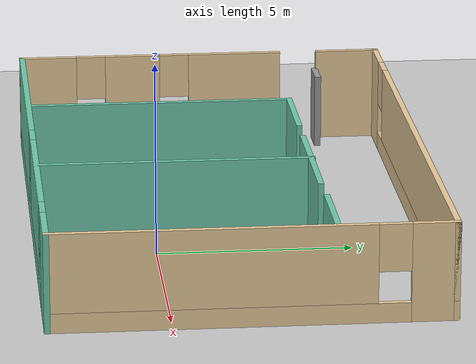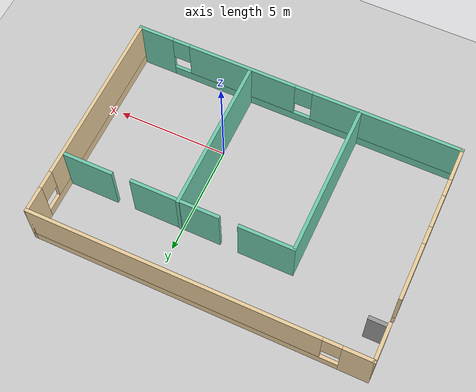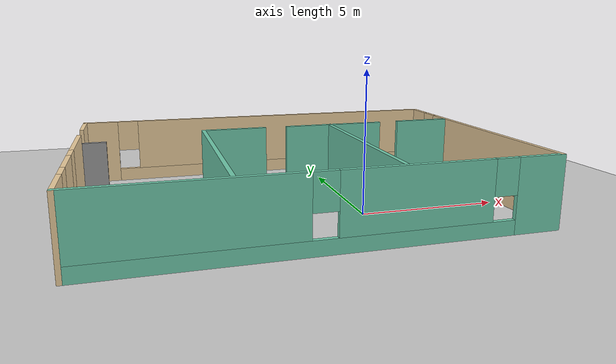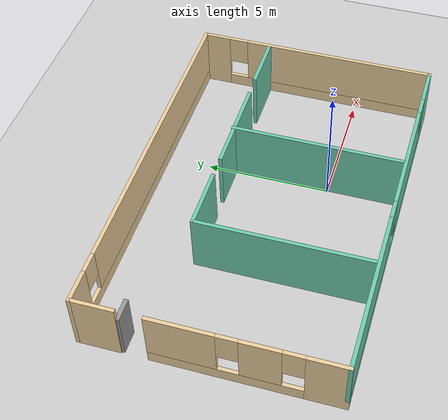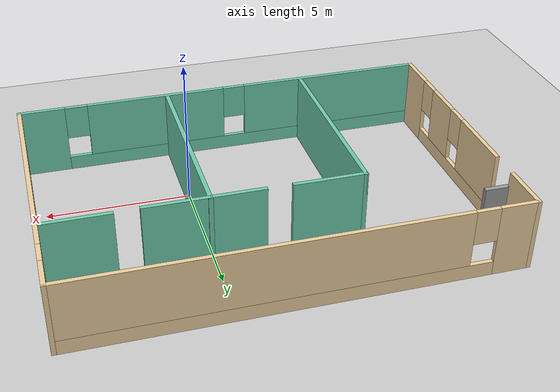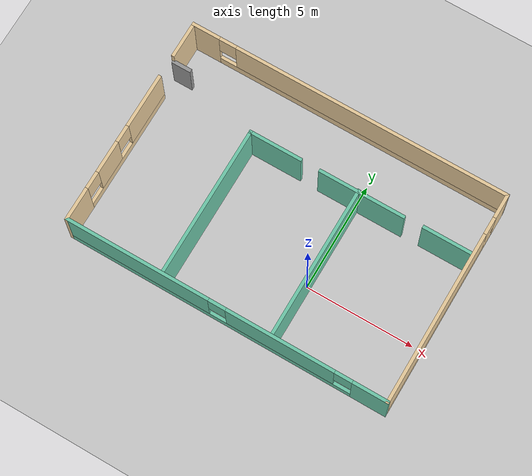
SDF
<sdf version="1.7">
 <world name="default">
  <plugin name="hello" filename="libhello.so"/>
  <light name="sun" type="directional">
   <pose>0 0 10 0 -0 0</pose>
   <diffuse>0.8 0.8 0.8 1</diffuse>
   <specular>0.2 0.2 0.2 1</specular>
   <attenuation>
    <range>1000</range>
    <constant>0.9</constant>
    <linear>0.01</linear>
    <quadratic>0.001</quadratic>
   </attenuation>
   <direction>-0.5 0.1 -0.9</direction>
   <spot><inner_angle>0</inner_angle><outer_angle>0</outer_angle><falloff>0</falloff></spot>
  </light>
  <model name="ground_plane">
   <static>1</static>
   <link name="link">
    <collision name="collision">
     <geometry><plane><normal>0 0 1</normal><size>100 100</size></plane></geometry>
     <surface>
      <contact><collide_bitmask>65535</collide_bitmask></contact>
      <friction><ode><mu>100</mu><mu2>50</mu2></ode></friction>
     </surface>
    </collision>
    <visual name="visual">
     <cast_shadows>0</cast_shadows>
     <geometry><plane><normal>0 0 1</normal><size>100 100</size></plane></geometry>
     <material>
      <script><uri>file://media/materials/scripts/gazebo.material</uri><name>Gazebo/Grey</name></script>
     </material>
    </visual>
   </link>
  </model>
  <gravity>0 0 -9.8</gravity>
  <magnetic_field>6e-06 2.3e-05 -4.2e-05</magnetic_field>
  <atmosphere type="adiabatic"/>
  <physics type="ode">
   <max_step_size>0.001</max_step_size>
   <real_time_factor>1</real_time_factor>
   <real_time_update_rate>1000</real_time_update_rate>
  </physics>
  <scene><ambient>0.4 0.4 0.4 1</ambient><background>0.7 0.7 0.7 1</background><shadows>1</shadows></scene>
  <spherical_coordinates>
   <surface_model>EARTH_WGS84</surface_model>
   <latitude_deg>0</latitude_deg>
   <longitude_deg>0</longitude_deg>
   <elevation>0</elevation>
   <heading_deg>0</heading_deg>
  </spherical_coordinates>
  <model name="house">
   <pose>-2.04047 1.91948 0 0 -0 0</pose>
   <link name="Door_2">
    <collision name="Door_2_Collision">
     <geometry><box><size>0.9 0.17 2</size></box></geometry>
     <pose>0 0 1 0 -0 0</pose>
    </collision>
    <visual name="Door_2_Visual">
     <pose>0 0 1 0 -0 0</pose>
     <geometry><box><size>0.9 0.17 2</size></box></geometry>
     <material>
      <script><uri>file://media/materials/scripts/gazebo.material</uri><name>Gazebo/Grey</name></script>
     </material>
    </visual>
    <pose>-7.00327 3.22519 0 0 -0 0</pose>
   </link>
   <link name="Wall_12">
    <collision name="Wall_12_Collision">
     <geometry><box><size>1.75 0.15 2.5</size></box></geometry>
     <pose>0 0 1.25 0 -0 0</pose>
    </collision>
    <visual name="Wall_12_Visual">
     <pose>0 0 1.25 0 -0 0</pose>
     <geometry><box><size>1.75 0.15 2.5</size></box></geometry>
     <material>
      <script><uri>file://media/materials/scripts/gazebo.material</uri><name>Gazebo/Grey</name></script>
      <ambient>0.921569 0.807843 0.615686 1</ambient>
     </material>
     <meta><layer>0</layer></meta>
    </visual>
    <pose>-7.425 4.125 0 0 -0 -1.5708</pose>
   </link>
   <link name="Wall_16">
    <pose>-7.425 -1.375 0 0 -0 1.5708</pose>
    <visual name="Wall_16_Visual_0">
     <pose>-2.83793 0 1.25 0 -0 0</pose>
     <geometry><box><size>1.57415 0.15 2.5</size></box></geometry>
     <material>
      <script><uri>file://media/materials/scripts/gazebo.material</uri><name>Gazebo/Grey</name></script>
      <ambient>0.921569 0.807843 0.615686 1</ambient>
     </material>
     <meta><layer>0</layer></meta>
    </visual>
    <collision name="Wall_16_Collision_0">
     <geometry><box><size>1.57415 0.15 2.5</size></box></geometry>
     <pose>-2.83793 0 1.25 0 -0 0</pose>
    </collision>
    <visual name="Wall_16_Visual_1">
     <pose>0.787074 0 0.25 0 -0 0</pose>
     <geometry><box><size>5.67585 0.15 0.5</size></box></geometry>
     <material>
      <script><uri>file://media/materials/scripts/gazebo.material</uri><name>Gazebo/Grey</name></script>
      <ambient>0.921569 0.807843 0.615686 1</ambient>
     </material>
     <meta><layer>0</layer></meta>
    </visual>
    <collision name="Wall_16_Collision_1">
     <geometry><box><size>5.67585 0.15 0.5</size></box></geometry>
     <pose>0.787074 0 0.25 0 -0 0</pose>
    </collision>
    <visual name="Wall_16_Visual_2">
     <pose>-0.493743 0 1.5 0 -0 0</pose>
     <geometry><box><size>1.51422 0.15 2</size></box></geometry>
     <material>
      <script><uri>file://media/materials/scripts/gazebo.material</uri><name>Gazebo/Grey</name></script>
      <ambient>0.921569 0.807843 0.615686 1</ambient>
     </material>
     <meta><layer>0</layer></meta>
    </visual>
    <collision name="Wall_16_Collision_2">
     <geometry><box><size>1.51422 0.15 2</size></box></geometry>
     <pose>-0.493743 0 1.5 0 -0 0</pose>
    </collision>
    <visual name="Wall_16_Visual_3">
     <pose>2.34418 0 1.5 0 -0 0</pose>
     <geometry><box><size>2.56163 0.15 2</size></box></geometry>
     <material>
      <script><uri>file://media/materials/scripts/gazebo.material</uri><name>Gazebo/Grey</name></script>
      <ambient>0.921569 0.807843 0.615686 1</ambient>
     </material>
     <meta><layer>0</layer></meta>
    </visual>
    <collision name="Wall_16_Collision_3">
     <geometry><box><size>2.56163 0.15 2</size></box></geometry>
     <pose>2.34418 0 1.5 0 -0 0</pose>
    </collision>
    <visual name="Wall_16_Visual_4">
     <pose>-1.65085 0 1.9 0 -0 0</pose>
     <geometry><box><size>0.8 0.15 1.2</size></box></geometry>
     <material>
      <script><uri>file://media/materials/scripts/gazebo.material</uri><name>Gazebo/Grey</name></script>
      <ambient>0.921569 0.807843 0.615686 1</ambient>
     </material>
     <meta><layer>0</layer></meta>
    </visual>
    <collision name="Wall_16_Collision_4">
     <geometry><box><size>0.8 0.15 1.2</size></box></geometry>
     <pose>-1.65085 0 1.9 0 -0 0</pose>
    </collision>
    <visual name="Wall_16_Visual_5">
     <pose>0.663365 0 1.9 0 -0 0</pose>
     <geometry><box><size>0.8 0.15 1.2</size></box></geometry>
     <material>
      <script><uri>file://media/materials/scripts/gazebo.material</uri><name>Gazebo/Grey</name></script>
      <ambient>0.921569 0.807843 0.615686 1</ambient>
     </material>
     <meta><layer>0</layer></meta>
    </visual>
    <collision name="Wall_16_Collision_5">
     <geometry><box><size>0.8 0.15 1.2</size></box></geometry>
     <pose>0.663365 0 1.9 0 -0 0</pose>
    </collision>
   </link>
   <link name="Wall_19">
    <collision name="Wall_19_Collision">
     <geometry><box><size>7 0.15 2.5</size></box></geometry>
     <pose>0 0 1.25 0 -0 0</pose>
    </collision>
    <visual name="Wall_19_Visual">
     <pose>0 0 1.25 0 -0 0</pose>
     <geometry><box><size>7 0.15 2.5</size></box></geometry>
     <material>
      <script><uri>file://media/materials/scripts/gazebo.material</uri><name>Gazebo/Grey</name></script>
      <ambient>0.435294 0.796078 0.67451 1</ambient>
     </material>
     <meta><layer>0</layer></meta>
    </visual>
    <pose>-2.93344 -1.40967 0 0 -0 1.5708</pose>
   </link>
   <link name="Wall_23">
    <collision name="Wall_23_Collision">
     <geometry><box><size>2.5 0.15 2.5</size></box></geometry>
     <pose>0 0 1.25 0 -0 0</pose>
    </collision>
    <visual name="Wall_23_Visual">
     <pose>0 0 1.25 0 -0 0</pose>
     <geometry><box><size>2.5 0.15 2.5</size></box></geometry>
     <material>
      <script><uri>file://media/materials/scripts/gazebo.material</uri><name>Gazebo/Grey</name></script>
      <ambient>0.435294 0.796078 0.67451 1</ambient>
     </material>
     <meta><layer>0</layer></meta>
    </visual>
    <pose>-1.75844 2.01533 0 0 -0 0</pose>
   </link>
   <link name="Wall_26">
    <collision name="Wall_26_Collision">
     <geometry><box><size>4 0.15 2.5</size></box></geometry>
     <pose>0 0 1.25 0 -0 0</pose>
    </collision>
    <visual name="Wall_26_Visual">
     <pose>0 0 1.25 0 -0 0</pose>
     <geometry><box><size>4 0.15 2.5</size></box></geometry>
     <material>
      <script><uri>file://media/materials/scripts/gazebo.material</uri><name>Gazebo/Grey</name></script>
      <ambient>0.435294 0.796078 0.67451 1</ambient>
     </material>
     <meta><layer>0</layer></meta>
    </visual>
    <pose>2.30881 2.00469 0 0 -0 0</pose>
   </link>
   <link name="Wall_28">
    <collision name="Wall_28_Collision">
     <geometry><box><size>2.25 0.15 2.5</size></box></geometry>
     <pose>0 0 1.25 0 -0 0</pose>
    </collision>
    <visual name="Wall_28_Visual">
     <pose>0 0 1.25 0 -0 0</pose>
     <geometry><box><size>2.25 0.15 2.5</size></box></geometry>
     <material>
      <script><uri>file://media/materials/scripts/gazebo.material</uri><name>Gazebo/Grey</name></script>
      <ambient>0.435294 0.796078 0.67451 1</ambient>
     </material>
     <meta><layer>0</layer></meta>
    </visual>
    <pose>6.23184 2.04089 0 0 -0 0</pose>
   </link>
   <link name="Wall_30">
    <collision name="Wall_30_Collision">
     <geometry><box><size>7 0.15 2.5</size></box></geometry>
     <pose>0 0 1.25 0 -0 0</pose>
    </collision>
    <visual name="Wall_30_Visual">
     <pose>0 0 1.25 0 -0 0</pose>
     <geometry><box><size>7 0.15 2.5</size></box></geometry>
     <material>
      <script><uri>file://media/materials/scripts/gazebo.material</uri><name>Gazebo/Grey</name></script>
      <ambient>0.435294 0.796078 0.67451 1</ambient>
     </material>
     <meta><layer>0</layer></meta>
    </visual>
    <pose>2.13918 -1.3895 0 0 -0 -1.5708</pose>
   </link>
   <link name="Wall_7">
    <pose>0 4.925 0 0 -0 0</pose>
    <visual name="Wall_7_Visual_0">
     <pose>-6.82653 0 1.25 0 -0 0</pose>
     <geometry><box><size>1.34694 0.15 2.5</size></box></geometry>
     <material>
      <script><uri>file://media/materials/scripts/gazebo.material</uri><name>Gazebo/Grey</name></script>
      <ambient>0.921569 0.807843 0.615686 1</ambient>
     </material>
     <meta><layer>0</layer></meta>
    </visual>
    <collision name="Wall_7_Collision_0">
     <geometry><box><size>1.34694 0.15 2.5</size></box></geometry>
     <pose>-6.82653 0 1.25 0 -0 0</pose>
    </collision>
    <visual name="Wall_7_Visual_1">
     <pose>0.67347 0 0.25 0 -0 0</pose>
     <geometry><box><size>13.6531 0.15 0.5</size></box></geometry>
     <material>
      <script><uri>file://media/materials/scripts/gazebo.material</uri><name>Gazebo/Grey</name></script>
      <ambient>0.921569 0.807843 0.615686 1</ambient>
     </material>
     <meta><layer>0</layer></meta>
    </visual>
    <collision name="Wall_7_Collision_1">
     <geometry><box><size>13.6531 0.15 0.5</size></box></geometry>
     <pose>0.67347 0 0.25 0 -0 0</pose>
    </collision>
    <visual name="Wall_7_Visual_2">
     <pose>1.07347 0 1.5 0 -0 0</pose>
     <geometry><box><size>12.8531 0.15 2</size></box></geometry>
     <material>
      <script><uri>file://media/materials/scripts/gazebo.material</uri><name>Gazebo/Grey</name></script>
      <ambient>0.921569 0.807843 0.615686 1</ambient>
     </material>
     <meta><layer>0</layer></meta>
    </visual>
    <collision name="Wall_7_Collision_2">
     <geometry><box><size>12.8531 0.15 2</size></box></geometry>
     <pose>1.07347 0 1.5 0 -0 0</pose>
    </collision>
    <visual name="Wall_7_Visual_3">
     <pose>-5.75306 0 1.9 0 -0 0</pose>
     <geometry><box><size>0.8 0.15 1.2</size></box></geometry>
     <material>
      <script><uri>file://media/materials/scripts/gazebo.material</uri><name>Gazebo/Grey</name></script>
      <ambient>0.921569 0.807843 0.615686 1</ambient>
     </material>
     <meta><layer>0</layer></meta>
    </visual>
    <collision name="Wall_7_Collision_3">
     <geometry><box><size>0.8 0.15 1.2</size></box></geometry>
     <pose>-5.75306 0 1.9 0 -0 0</pose>
    </collision>
   </link>
   <link name="Wall_8">
    <pose>7.425 0 0 0 -0 -1.5708</pose>
    <visual name="Wall_8_Visual_0">
     <pose>-4.41167 0 1.25 0 -0 0</pose>
     <geometry><box><size>1.17666 0.15 2.5</size></box></geometry>
     <material>
      <script><uri>file://media/materials/scripts/gazebo.material</uri><name>Gazebo/Grey</name></script>
      <ambient>0.921569 0.807843 0.615686 1</ambient>
     </material>
     <meta><layer>0</layer></meta>
    </visual>
    <collision name="Wall_8_Collision_0">
     <geometry><box><size>1.17666 0.15 2.5</size></box></geometry>
     <pose>-4.41167 0 1.25 0 -0 0</pose>
    </collision>
    <visual name="Wall_8_Visual_1">
     <pose>0.588331 0 0.25 0 -0 0</pose>
     <geometry><box><size>8.82334 0.15 0.5</size></box></geometry>
     <material>
      <script><uri>file://media/materials/scripts/gazebo.material</uri><name>Gazebo/Grey</name></script>
      <ambient>0.921569 0.807843 0.615686 1</ambient>
     </material>
     <meta><layer>0</layer></meta>
    </visual>
    <collision name="Wall_8_Collision_1">
     <geometry><box><size>8.82334 0.15 0.5</size></box></geometry>
     <pose>0.588331 0 0.25 0 -0 0</pose>
    </collision>
    <visual name="Wall_8_Visual_2">
     <pose>0.988331 0 1.5 0 -0 0</pose>
     <geometry><box><size>8.02334 0.15 2</size></box></geometry>
     <material>
      <script><uri>file://media/materials/scripts/gazebo.material</uri><name>Gazebo/Grey</name></script>
      <ambient>0.921569 0.807843 0.615686 1</ambient>
     </material>
     <meta><layer>0</layer></meta>
    </visual>
    <collision name="Wall_8_Collision_2">
     <geometry><box><size>8.02334 0.15 2</size></box></geometry>
     <pose>0.988331 0 1.5 0 -0 0</pose>
    </collision>
    <visual name="Wall_8_Visual_3">
     <pose>-3.42334 0 1.9 0 -0 0</pose>
     <geometry><box><size>0.8 0.15 1.2</size></box></geometry>
     <material>
      <script><uri>file://media/materials/scripts/gazebo.material</uri><name>Gazebo/Grey</name></script>
      <ambient>0.921569 0.807843 0.615686 1</ambient>
     </material>
     <meta><layer>0</layer></meta>
    </visual>
    <collision name="Wall_8_Collision_3">
     <geometry><box><size>0.8 0.15 1.2</size></box></geometry>
     <pose>-3.42334 0 1.9 0 -0 0</pose>
    </collision>
   </link>
   <link name="Wall_9">
    <pose>0 -4.925 0 0 -0 3.14159</pose>
    <visual name="Wall_9_Visual_0">
     <pose>-6.66957 0 1.25 0 -0 0</pose>
     <geometry><box><size>1.66085 0.15 2.5</size></box></geometry>
     <material>
      <script><uri>file://media/materials/scripts/gazebo.material</uri><name>Gazebo/Grey</name></script>
      <ambient>0.435294 0.796078 0.67451 1</ambient>
     </material>
     <meta><layer>0</layer></meta>
    </visual>
    <collision name="Wall_9_Collision_0">
     <geometry><box><size>1.66085 0.15 2.5</size></box></geometry>
     <pose>-6.66957 0 1.25 0 -0 0</pose>
    </collision>
    <visual name="Wall_9_Visual_1">
     <pose>0.830427 0 0.25 0 -0 0</pose>
     <geometry><box><size>13.3391 0.15 0.5</size></box></geometry>
     <material>
      <script><uri>file://media/materials/scripts/gazebo.material</uri><name>Gazebo/Grey</name></script>
      <ambient>0.435294 0.796078 0.67451 1</ambient>
     </material>
     <meta><layer>0</layer></meta>
    </visual>
    <collision name="Wall_9_Collision_1">
     <geometry><box><size>13.3391 0.15 0.5</size></box></geometry>
     <pose>0.830427 0 0.25 0 -0 0</pose>
    </collision>
    <visual name="Wall_9_Visual_2">
     <pose>-2.54011 0 1.5 0 -0 0</pose>
     <geometry><box><size>4.99807 0.15 2</size></box></geometry>
     <material>
      <script><uri>file://media/materials/scripts/gazebo.material</uri><name>Gazebo/Grey</name></script>
      <ambient>0.435294 0.796078 0.67451 1</ambient>
     </material>
     <meta><layer>0</layer></meta>
    </visual>
    <collision name="Wall_9_Collision_2">
     <geometry><box><size>4.99807 0.15 2</size></box></geometry>
     <pose>-2.54011 0 1.5 0 -0 0</pose>
    </collision>
    <visual name="Wall_9_Visual_3">
     <pose>4.12946 0 1.5 0 -0 0</pose>
     <geometry><box><size>6.74107 0.15 2</size></box></geometry>
     <material>
      <script><uri>file://media/materials/scripts/gazebo.material</uri><name>Gazebo/Grey</name></script>
      <ambient>0.435294 0.796078 0.67451 1</ambient>
     </material>
     <meta><layer>0</layer></meta>
    </visual>
    <collision name="Wall_9_Collision_3">
     <geometry><box><size>6.74107 0.15 2</size></box></geometry>
     <pose>4.12946 0 1.5 0 -0 0</pose>
    </collision>
    <visual name="Wall_9_Visual_4">
     <pose>-5.43915 0 1.9 0 -0 0</pose>
     <geometry><box><size>0.8 0.15 1.2</size></box></geometry>
     <material>
      <script><uri>file://media/materials/scripts/gazebo.material</uri><name>Gazebo/Grey</name></script>
      <ambient>0.435294 0.796078 0.67451 1</ambient>
     </material>
     <meta><layer>0</layer></meta>
    </visual>
    <collision name="Wall_9_Collision_4">
     <geometry><box><size>0.8 0.15 1.2</size></box></geometry>
     <pose>-5.43915 0 1.9 0 -0 0</pose>
    </collision>
    <visual name="Wall_9_Visual_5">
     <pose>0.358926 0 1.9 0 -0 0</pose>
     <geometry><box><size>0.8 0.15 1.2</size></box></geometry>
     <material>
      <script><uri>file://media/materials/scripts/gazebo.material</uri><name>Gazebo/Grey</name></script>
      <ambient>0.435294 0.796078 0.67451 1</ambient>
     </material>
     <meta><layer>0</layer></meta>
    </visual>
    <collision name="Wall_9_Collision_5">
     <geometry><box><size>0.8 0.15 1.2</size></box></geometry>
     <pose>0.358926 0 1.9 0 -0 0</pose>
    </collision>
   </link>
   <static>1</static>
  </model>
 </world>
</sdf>
